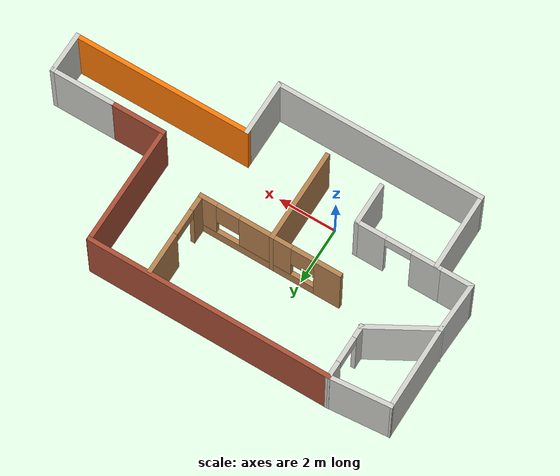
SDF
<?xml version='1.0'?>
<sdf version='1.7'>
  <model name='World'>
    <pose>2.3275 1.33407 0 0 -0 0</pose>
    <link name='Wall_41'>
      <collision name='Wall_41_Collision'>
        <geometry>
          <box>
            <size>1.5 0.15 2.5</size>
          </box>
        </geometry>
        <pose>0 0 1.25 0 -0 0</pose>
      </collision>
      <visual name='Wall_41_Visual'>
        <pose>0 0 1.25 0 -0 0</pose>
        <geometry>
          <box>
            <size>1.5 0.15 2.5</size>
          </box>
        </geometry>
        <material>
          <script>
            <uri>file://media/materials/scripts/gazebo.material</uri>
            <name>Gazebo/CeilingTiled</name>
          </script>
          <ambient>1 1 1 1</ambient>
        </material>
        <meta>
          <layer>0</layer>
        </meta>
      </visual>
      <pose>-3.25027 -1.70266 0 0 -0 1.5708</pose>
    </link>
    <link name='Wall_42'>
      <pose>-4.67527 -1.02766 0 0 -0 3.14159</pose>
      <visual name='Wall_42_Visual_0'>
        <pose>-0.963915 0 1.25 0 -0 0</pose>
        <geometry>
          <box>
            <size>1.07217 0.15 2.5</size>
          </box>
        </geometry>
        <material>
          <script>
            <uri>file://media/materials/scripts/gazebo.material</uri>
            <name>Gazebo/CeilingTiled</name>
          </script>
          <ambient>0.388235 0.270588 0.172549 1</ambient>
        </material>
        <meta>
          <layer>0</layer>
        </meta>
      </visual>
      <collision name='Wall_42_Collision_0'>
        <geometry>
          <box>
            <size>1.07217 0.15 2.5</size>
          </box>
        </geometry>
        <pose>-0.963915 0 1.25 0 -0 0</pose>
      </collision>
      <visual name='Wall_42_Visual_1'>
        <pose>0.986085 0 1.25 0 -0 0</pose>
        <geometry>
          <box>
            <size>1.02783 0.15 2.5</size>
          </box>
        </geometry>
        <material>
          <script>
            <uri>file://media/materials/scripts/gazebo.material</uri>
            <name>Gazebo/CeilingTiled</name>
          </script>
          <ambient>0.388235 0.270588 0.172549 1</ambient>
        </material>
        <meta>
          <layer>0</layer>
        </meta>
      </visual>
      <collision name='Wall_42_Collision_1'>
        <geometry>
          <box>
            <size>1.02783 0.15 2.5</size>
          </box>
        </geometry>
        <pose>0.986085 0 1.25 0 -0 0</pose>
      </collision>
      <visual name='Wall_42_Visual_2'>
        <pose>0.02217 0 2.25 0 -0 0</pose>
        <geometry>
          <box>
            <size>0.9 0.15 0.5</size>
          </box>
        </geometry>
        <material>
          <script>
            <uri>file://media/materials/scripts/gazebo.material</uri>
            <name>Gazebo/CeilingTiled</name>
          </script>
          <ambient>0.388235 0.270588 0.172549 1</ambient>
        </material>
        <meta>
          <layer>0</layer>
        </meta>
      </visual>
      <collision name='Wall_42_Collision_2'>
        <geometry>
          <box>
            <size>0.9 0.15 0.5</size>
          </box>
        </geometry>
        <pose>0.02217 0 2.25 0 -0 0</pose>
      </collision>
    </link>
    <link name='Wall_43'>
      <collision name='Wall_43_Collision'>
        <geometry>
          <box>
            <size>1.25 0.15 2.5</size>
          </box>
        </geometry>
        <pose>0 0 1.25 0 -0 0</pose>
      </collision>
      <visual name='Wall_43_Visual'>
        <pose>0 0 1.25 0 -0 0</pose>
        <geometry>
          <box>
            <size>1.25 0.15 2.5</size>
          </box>
        </geometry>
        <material>
          <script>
            <uri>file://media/materials/scripts/gazebo.material</uri>
            <name>Gazebo/CeilingTiled</name>
          </script>
          <ambient>1 1 1 1</ambient>
        </material>
        <meta>
          <layer>0</layer>
        </meta>
      </visual>
      <pose>-6.65027 -1.02766 0 0 -0 3.14159</pose>
    </link>
    <link name='Wall_44'>
      <collision name='Wall_44_Collision'>
        <geometry>
          <box>
            <size>1.80101 0.15 2.5</size>
          </box>
        </geometry>
        <pose>0 0 1.25 0 -0 0</pose>
      </collision>
      <visual name='Wall_44_Visual'>
        <pose>0 0 1.25 0 -0 0</pose>
        <geometry>
          <box>
            <size>1.80101 0.15 2.5</size>
          </box>
        </geometry>
        <material>
          <script>
            <uri>file://media/materials/scripts/gazebo.material</uri>
            <name>Gazebo/CeilingTiled</name>
          </script>
          <ambient>1 1 1 1</ambient>
        </material>
        <meta>
          <layer>0</layer>
        </meta>
      </visual>
      <pose>-7.16606 -0.202869 0 0 -0 1.52934</pose>
    </link>
    <link name='Wall_47'>
      <collision name='Wall_47_Collision'>
        <geometry>
          <box>
            <size>2.5 0.15 2.5</size>
          </box>
        </geometry>
        <pose>0 0 1.25 0 -0 0</pose>
      </collision>
      <visual name='Wall_47_Visual'>
        <pose>0 0 1.25 0 -0 0</pose>
        <geometry>
          <box>
            <size>2.5 0.15 2.5</size>
          </box>
        </geometry>
        <material>
          <script>
            <uri>file://media/materials/scripts/gazebo.material</uri>
            <name>Gazebo/CeilingTiled</name>
          </script>
          <ambient>1 1 1 1</ambient>
        </material>
        <meta>
          <layer>0</layer>
        </meta>
      </visual>
      <pose>-6.11427 1.20942 0 0 -0 0.523599</pose>
    </link>
    <link name='Wall_50'>
      <pose>-5.09669 2.72193 0 0 -0 1.5708</pose>
      <visual name='Wall_50_Visual_0'>
        <pose>-0.758464 0 1.25 0 -0 0</pose>
        <geometry>
          <box>
            <size>0.483072 0.15 2.5</size>
          </box>
        </geometry>
        <material>
          <script>
            <uri>file://media/materials/scripts/gazebo.material</uri>
            <name>Gazebo/CeilingTiled</name>
          </script>
          <ambient>1 1 1 1</ambient>
        </material>
        <meta>
          <layer>0</layer>
        </meta>
      </visual>
      <collision name='Wall_50_Collision_0'>
        <geometry>
          <box>
            <size>0.483072 0.15 2.5</size>
          </box>
        </geometry>
        <pose>-0.758464 0 1.25 0 -0 0</pose>
      </collision>
      <visual name='Wall_50_Visual_1'>
        <pose>0.691536 0 1.25 0 -0 0</pose>
        <geometry>
          <box>
            <size>0.616928 0.15 2.5</size>
          </box>
        </geometry>
        <material>
          <script>
            <uri>file://media/materials/scripts/gazebo.material</uri>
            <name>Gazebo/CeilingTiled</name>
          </script>
          <ambient>1 1 1 1</ambient>
        </material>
        <meta>
          <layer>0</layer>
        </meta>
      </visual>
      <collision name='Wall_50_Collision_1'>
        <geometry>
          <box>
            <size>0.616928 0.15 2.5</size>
          </box>
        </geometry>
        <pose>0.691536 0 1.25 0 -0 0</pose>
      </collision>
      <visual name='Wall_50_Visual_2'>
        <pose>-0.066928 0 2.25 0 -0 0</pose>
        <geometry>
          <box>
            <size>0.9 0.15 0.5</size>
          </box>
        </geometry>
        <material>
          <script>
            <uri>file://media/materials/scripts/gazebo.material</uri>
            <name>Gazebo/CeilingTiled</name>
          </script>
          <ambient>1 1 1 1</ambient>
        </material>
        <meta>
          <layer>0</layer>
        </meta>
      </visual>
      <collision name='Wall_50_Collision_2'>
        <geometry>
          <box>
            <size>0.9 0.15 0.5</size>
          </box>
        </geometry>
        <pose>-0.066928 0 2.25 0 -0 0</pose>
      </collision>
    </link>
    <link name='Wall_51'>
      <collision name='Wall_51_Collision'>
        <geometry>
          <box>
            <size>8.5 0.15 2.5</size>
          </box>
        </geometry>
        <pose>0 0 1.25 0 -0 0</pose>
      </collision>
      <visual name='Wall_51_Visual'>
        <pose>0 0 1.25 0 -0 0</pose>
        <geometry>
          <box>
            <size>8.5 0.15 2.5</size>
          </box>
        </geometry>
        <material>
          <script>
            <uri>file://media/materials/scripts/gazebo.material</uri>
            <name>Gazebo/Bricks</name>
          </script>
          <ambient>1 1 1 1</ambient>
        </material>
        <meta>
          <layer>0</layer>
        </meta>
      </visual>
      <pose>-0.921689 3.64692 0 0 -0 0</pose>
    </link>
    <link name='Wall_52'>
      <collision name='Wall_52_Collision'>
        <geometry>
          <box>
            <size>4.25 0.15 2.5</size>
          </box>
        </geometry>
        <pose>0 0 1.25 0 -0 0</pose>
      </collision>
      <visual name='Wall_52_Visual'>
        <pose>0 0 1.25 0 -0 0</pose>
        <geometry>
          <box>
            <size>4.25 0.15 2.5</size>
          </box>
        </geometry>
        <material>
          <script>
            <uri>file://media/materials/scripts/gazebo.material</uri>
            <name>Gazebo/Bricks</name>
          </script>
          <ambient>1 1 1 1</ambient>
        </material>
        <meta>
          <layer>0</layer>
        </meta>
      </visual>
      <pose>3.25331 1.59692 0 0 -0 -1.5708</pose>
    </link>
    <link name='Wall_53'>
      <collision name='Wall_53_Collision'>
        <geometry>
          <box>
            <size>2 0.15 2.5</size>
          </box>
        </geometry>
        <pose>0 0 1.25 0 -0 0</pose>
      </collision>
      <visual name='Wall_53_Visual'>
        <pose>0 0 1.25 0 -0 0</pose>
        <geometry>
          <box>
            <size>2 0.15 2.5</size>
          </box>
        </geometry>
        <material>
          <script>
            <uri>file://media/materials/scripts/gazebo.material</uri>
            <name>Gazebo/Bricks</name>
          </script>
          <ambient>0.760784 0.662745 0.627451 1</ambient>
        </material>
        <meta>
          <layer>0</layer>
        </meta>
      </visual>
      <pose>4.17831 -0.453075 0 0 -0 0</pose>
    </link>
    <link name='Wall_54'>
      <collision name='Wall_54_Collision'>
        <geometry>
          <box>
            <size>2.25 0.15 2.5</size>
          </box>
        </geometry>
        <pose>0 0 1.25 0 -0 0</pose>
      </collision>
      <visual name='Wall_54_Visual'>
        <pose>0 0 1.25 0 -0 0</pose>
        <geometry>
          <box>
            <size>2.25 0.15 2.5</size>
          </box>
        </geometry>
        <material>
          <script>
            <uri>file://media/materials/scripts/gazebo.material</uri>
            <name>Gazebo/CeilingTiled</name>
          </script>
          <ambient>0.435294 0.796078 0.67451 1</ambient>
        </material>
        <meta>
          <layer>0</layer>
        </meta>
      </visual>
      <pose>6.15331 -0.453075 0 0 -0 0</pose>
    </link>
    <link name='Wall_55'>
      <collision name='Wall_55_Collision'>
        <geometry>
          <box>
            <size>1.5 0.15 2.5</size>
          </box>
        </geometry>
        <pose>0 0 1.25 0 -0 0</pose>
      </collision>
      <visual name='Wall_55_Visual'>
        <pose>0 0 1.25 0 -0 0</pose>
        <geometry>
          <box>
            <size>1.5 0.15 2.5</size>
          </box>
        </geometry>
        <material>
          <script>
            <uri>file://media/materials/scripts/gazebo.material</uri>
            <name>Gazebo/CeilingTiled</name>
          </script>
          <ambient>1 1 1 1</ambient>
        </material>
        <meta>
          <layer>0</layer>
        </meta>
      </visual>
      <pose>7.20331 -1.12807 0 0 -0 -1.5708</pose>
    </link>
    <link name='Wall_57'>
      <collision name='Wall_57_Collision'>
        <geometry>
          <box>
            <size>6.25 0.15 2.5</size>
          </box>
        </geometry>
        <pose>0 0 1.25 0 -0 0</pose>
      </collision>
      <visual name='Wall_57_Visual'>
        <pose>0 0 1.25 0 -0 0</pose>
        <geometry>
          <box>
            <size>6.25 0.15 2.5</size>
          </box>
        </geometry>
        <material>
          <script>
            <uri>file://media/materials/scripts/gazebo.material</uri>
            <name>Gazebo/Grey</name>
          </script>
          <ambient>0.996078 0.47451 0.0196078 1</ambient>
        </material>
        <meta>
          <layer>0</layer>
        </meta>
      </visual>
      <pose>4.15331 -1.80307 0 0 -0 3.14159</pose>
    </link>
    <link name='Wall_58'>
      <collision name='Wall_58_Collision'>
        <geometry>
          <box>
            <size>2 0.15 2.5</size>
          </box>
        </geometry>
        <pose>0 0 1.25 0 -0 0</pose>
      </collision>
      <visual name='Wall_58_Visual'>
        <pose>0 0 1.25 0 -0 0</pose>
        <geometry>
          <box>
            <size>2 0.15 2.5</size>
          </box>
        </geometry>
        <material>
          <script>
            <uri>file://media/materials/scripts/gazebo.material</uri>
            <name>Gazebo/CeilingTiled</name>
          </script>
          <ambient>1 1 1 1</ambient>
        </material>
        <meta>
          <layer>0</layer>
        </meta>
      </visual>
      <pose>1.10331 -2.72808 0 0 -0 -1.5708</pose>
    </link>
    <link name='Wall_59'>
      <collision name='Wall_59_Collision'>
        <geometry>
          <box>
            <size>7.25 0.15 2.5</size>
          </box>
        </geometry>
        <pose>0 0 1.25 0 -0 0</pose>
      </collision>
      <visual name='Wall_59_Visual'>
        <pose>0 0 1.25 0 -0 0</pose>
        <geometry>
          <box>
            <size>7.25 0.15 2.5</size>
          </box>
        </geometry>
        <material>
          <script>
            <uri>file://media/materials/scripts/gazebo.material</uri>
            <name>Gazebo/CeilingTiled</name>
          </script>
          <ambient>1 1 1 1</ambient>
        </material>
        <meta>
          <layer>0</layer>
        </meta>
      </visual>
      <pose>-2.44669 -3.65307 0 0 -0 3.14159</pose>
    </link>
    <link name='Wall_60'>
      <collision name='Wall_60_Collision'>
        <geometry>
          <box>
            <size>2.75 0.15 2.5</size>
          </box>
        </geometry>
        <pose>0 0 1.25 0 -0 0</pose>
      </collision>
      <visual name='Wall_60_Visual'>
        <pose>0 0 1.25 0 -0 0</pose>
        <geometry>
          <box>
            <size>2.75 0.15 2.5</size>
          </box>
        </geometry>
        <material>
          <script>
            <uri>file://media/materials/scripts/gazebo.material</uri>
            <name>Gazebo/CeilingTiled</name>
          </script>
          <ambient>1 1 1 1</ambient>
        </material>
        <meta>
          <layer>0</layer>
        </meta>
      </visual>
      <pose>-5.99669 -2.35308 0 0 -0 1.5708</pose>
    </link>
    <link name='Wall_62'>
      <pose>-1.26157 0.713054 0 0 -0 -5.3e-05</pose>
      <visual name='Wall_62_Visual_0'>
        <pose>-2.03741 0 1.25 0 -0 0</pose>
        <geometry>
          <box>
            <size>0.925179 0.15 2.5</size>
          </box>
        </geometry>
        <material>
          <script>
            <uri>file://media/materials/scripts/gazebo.material</uri>
            <name>Gazebo/Wood</name>
          </script>
          <ambient>0.647059 0.113725 0.176471 1</ambient>
        </material>
        <meta>
          <layer>0</layer>
        </meta>
      </visual>
      <collision name='Wall_62_Collision_0'>
        <geometry>
          <box>
            <size>0.925179 0.15 2.5</size>
          </box>
        </geometry>
        <pose>-2.03741 0 1.25 0 -0 0</pose>
      </collision>
      <visual name='Wall_62_Visual_1'>
        <pose>0.462589 0 0.25 0 -0 0</pose>
        <geometry>
          <box>
            <size>4.07482 0.15 0.5</size>
          </box>
        </geometry>
        <material>
          <script>
            <uri>file://media/materials/scripts/gazebo.material</uri>
            <name>Gazebo/Wood</name>
          </script>
          <ambient>0.647059 0.113725 0.176471 1</ambient>
        </material>
        <meta>
          <layer>0</layer>
        </meta>
      </visual>
      <collision name='Wall_62_Collision_1'>
        <geometry>
          <box>
            <size>4.07482 0.15 0.5</size>
          </box>
        </geometry>
        <pose>0.462589 0 0.25 0 -0 0</pose>
      </collision>
      <visual name='Wall_62_Visual_2'>
        <pose>0.141923 0 1.5 0 -0 0</pose>
        <geometry>
          <box>
            <size>1.83349 0.15 2</size>
          </box>
        </geometry>
        <material>
          <script>
            <uri>file://media/materials/scripts/gazebo.material</uri>
            <name>Gazebo/Wood</name>
          </script>
          <ambient>0.647059 0.113725 0.176471 1</ambient>
        </material>
        <meta>
          <layer>0</layer>
        </meta>
      </visual>
      <collision name='Wall_62_Collision_2'>
        <geometry>
          <box>
            <size>1.83349 0.15 2</size>
          </box>
        </geometry>
        <pose>0.141923 0 1.5 0 -0 0</pose>
      </collision>
      <visual name='Wall_62_Visual_3'>
        <pose>2.17933 0 1.5 0 -0 0</pose>
        <geometry>
          <box>
            <size>0.641333 0.15 2</size>
          </box>
        </geometry>
        <material>
          <script>
            <uri>file://media/materials/scripts/gazebo.material</uri>
            <name>Gazebo/Wood</name>
          </script>
          <ambient>0.647059 0.113725 0.176471 1</ambient>
        </material>
        <meta>
          <layer>0</layer>
        </meta>
      </visual>
      <collision name='Wall_62_Collision_3'>
        <geometry>
          <box>
            <size>0.641333 0.15 2</size>
          </box>
        </geometry>
        <pose>2.17933 0 1.5 0 -0 0</pose>
      </collision>
      <visual name='Wall_62_Visual_4'>
        <pose>-1.17482 0 1.9 0 -0 0</pose>
        <geometry>
          <box>
            <size>0.8 0.15 1.2</size>
          </box>
        </geometry>
        <material>
          <script>
            <uri>file://media/materials/scripts/gazebo.material</uri>
            <name>Gazebo/Wood</name>
          </script>
          <ambient>0.647059 0.113725 0.176471 1</ambient>
        </material>
        <meta>
          <layer>0</layer>
        </meta>
      </visual>
      <collision name='Wall_62_Collision_4'>
        <geometry>
          <box>
            <size>0.8 0.15 1.2</size>
          </box>
        </geometry>
        <pose>-1.17482 0 1.9 0 -0 0</pose>
      </collision>
      <visual name='Wall_62_Visual_5'>
        <pose>1.45867 0 1.9 0 -0 0</pose>
        <geometry>
          <box>
            <size>0.8 0.15 1.2</size>
          </box>
        </geometry>
        <material>
          <script>
            <uri>file://media/materials/scripts/gazebo.material</uri>
            <name>Gazebo/Wood</name>
          </script>
          <ambient>0.647059 0.113725 0.176471 1</ambient>
        </material>
        <meta>
          <layer>0</layer>
        </meta>
      </visual>
      <collision name='Wall_62_Collision_5'>
        <geometry>
          <box>
            <size>0.8 0.15 1.2</size>
          </box>
        </geometry>
        <pose>1.45867 0 1.9 0 -0 0</pose>
      </collision>
    </link>
    <link name='Wall_64'>
      <collision name='Wall_64_Collision'>
        <geometry>
          <box>
            <size>3.25 0.15 2.5</size>
          </box>
        </geometry>
        <pose>0 0 1.25 0 -0 0</pose>
      </collision>
      <visual name='Wall_64_Visual'>
        <pose>0 0 1.25 0 -0 0</pose>
        <geometry>
          <box>
            <size>3.25 0.15 2.5</size>
          </box>
        </geometry>
        <material>
          <script>
            <uri>file://media/materials/scripts/gazebo.material</uri>
            <name>Gazebo/Wood</name>
          </script>
          <ambient>1 1 1 1</ambient>
        </material>
        <meta>
          <layer>0</layer>
        </meta>
      </visual>
      <pose>-1.34581 -0.836817 0 0 -0 -1.5708</pose>
    </link>
    <link name='Wall_66'>
      <collision name='Wall_66_Collision'>
        <geometry>
          <box>
            <size>3 0.15 2.5</size>
          </box>
        </geometry>
        <pose>0 0 1.25 0 -0 0</pose>
      </collision>
      <visual name='Wall_66_Visual'>
        <pose>0 0 1.25 0 -0 0</pose>
        <geometry>
          <box>
            <size>3 0.15 2.5</size>
          </box>
        </geometry>
        <material>
          <script>
            <uri>file://media/materials/scripts/gazebo.material</uri>
            <name>Gazebo/CeilingTiled</name>
          </script>
          <ambient>1 1 1 1</ambient>
        </material>
        <meta>
          <layer>0</layer>
        </meta>
      </visual>
      <pose>-7.13185 2.04692 0 0 -0 1.5708</pose>
    </link>
    <link name='Wall_67'>
      <collision name='Wall_67_Collision'>
        <geometry>
          <box>
            <size>2.19267 0.15 2.5</size>
          </box>
        </geometry>
        <pose>0 0 1.25 0 -0 0</pose>
      </collision>
      <visual name='Wall_67_Visual'>
        <pose>0 0 1.25 0 -0 0</pose>
        <geometry>
          <box>
            <size>2.19267 0.15 2.5</size>
          </box>
        </geometry>
        <material>
          <script>
            <uri>file://media/materials/scripts/gazebo.material</uri>
            <name>Gazebo/CeilingTiled</name>
          </script>
          <ambient>1 1 1 1</ambient>
        </material>
        <meta>
          <layer>0</layer>
        </meta>
      </visual>
      <pose>-6.11427 3.55943 0 0 -0 0.085777</pose>
    </link>
    <link name='Wall_69'>
      <pose>1.1635 2.13793 0 0 -0 1.5708</pose>
      <visual name='Wall_69_Visual_0'>
        <pose>-1.18427 0 1.25 0 -0 0</pose>
        <geometry>
          <box>
            <size>0.631449 0.15 2.5</size>
          </box>
        </geometry>
        <material>
          <script>
            <uri>file://media/materials/scripts/gazebo.material</uri>
            <name>Gazebo/Wood</name>
          </script>
          <ambient>1 1 1 1</ambient>
        </material>
        <meta>
          <layer>0</layer>
        </meta>
      </visual>
      <collision name='Wall_69_Collision_0'>
        <geometry>
          <box>
            <size>0.631449 0.15 2.5</size>
          </box>
        </geometry>
        <pose>-1.18427 0 1.25 0 -0 0</pose>
      </collision>
      <visual name='Wall_69_Visual_1'>
        <pose>0.765725 0 1.25 0 -0 0</pose>
        <geometry>
          <box>
            <size>1.46855 0.15 2.5</size>
          </box>
        </geometry>
        <material>
          <script>
            <uri>file://media/materials/scripts/gazebo.material</uri>
            <name>Gazebo/Wood</name>
          </script>
          <ambient>1 1 1 1</ambient>
        </material>
        <meta>
          <layer>0</layer>
        </meta>
      </visual>
      <collision name='Wall_69_Collision_1'>
        <geometry>
          <box>
            <size>1.46855 0.15 2.5</size>
          </box>
        </geometry>
        <pose>0.765725 0 1.25 0 -0 0</pose>
      </collision>
      <visual name='Wall_69_Visual_2'>
        <pose>-0.418551 0 2.25 0 -0 0</pose>
        <geometry>
          <box>
            <size>0.9 0.15 0.5</size>
          </box>
        </geometry>
        <material>
          <script>
            <uri>file://media/materials/scripts/gazebo.material</uri>
            <name>Gazebo/Wood</name>
          </script>
          <ambient>1 1 1 1</ambient>
        </material>
        <meta>
          <layer>0</layer>
        </meta>
      </visual>
      <collision name='Wall_69_Collision_2'>
        <geometry>
          <box>
            <size>0.9 0.15 0.5</size>
          </box>
        </geometry>
        <pose>-0.418551 0 2.25 0 -0 0</pose>
      </collision>
    </link>
    <static>1</static>
  </model>
</sdf>
